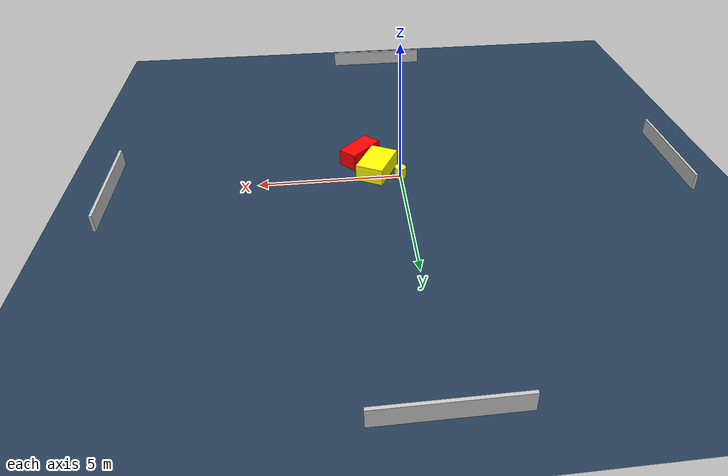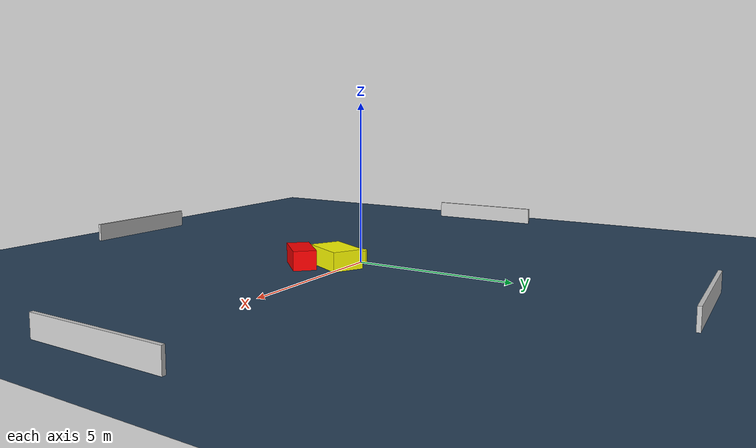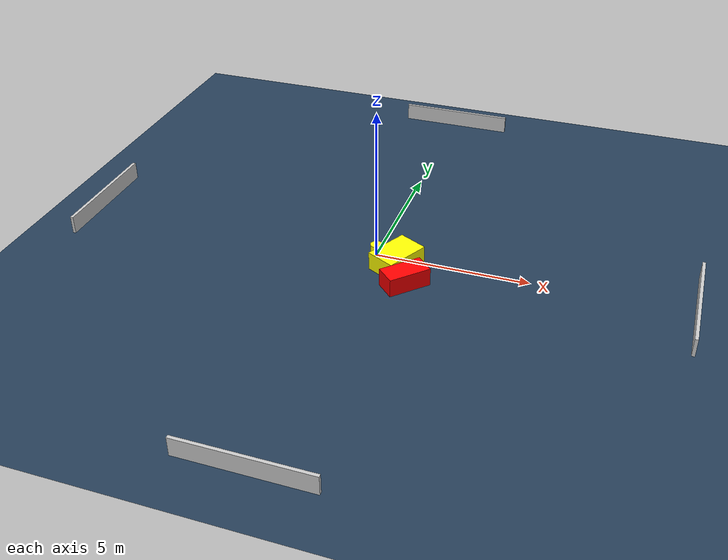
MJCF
<?xml version="1.0" ?>
<mujoco model="generated_environment">
  <option timestep="0.01" integrator="RK4" cone="elliptic"/>
  <default>
    <geom density="1"/>
  </default>
  <asset>
    <texture builtin="gradient" height="3072" name="skybox" rgb1="0.3 0.5 0.7" rgb2="0 0 0" type="skybox" width="512"/>
    <texture builtin="checker" height="300" name="groundplane" rgb1="0.2 0.3 0.4" rgb2="0.1 0.2 0.3" type="2d" width="300"/>
    <material name="groundplane" reflectance="0.2" texrepeat="5 5" texture="groundplane"/>
  </asset>
  <worldbody>
    <light dir="0 0 -1" directional="true" pos="0 0 1.5"/>
    <geom condim="3" friction="0.5 0.005 0.001" material="groundplane" name="floor" pos="0 0 0" size="0 0 0.05" type="plane"/>
    <body name="walls">
      <geom name="wall_1" condim="4" pos="-10.0 0.0 0.3" rgba="0.800000011920929 0.800000011920929 0.800000011920929 1.0" size="0.05 2.0 0.3" type="box"/>
      <geom name="wall_2" condim="4" pos="10.0 0.0 0.3" rgba="0.800000011920929 0.800000011920929 0.800000011920929 1.0" size="0.05 2.0 0.3" type="box"/>
      <geom name="wall_3" condim="4" pos="0.0 -10.0 0.3" rgba="0.800000011920929 0.800000011920929 0.800000011920929 1.0" size="2.0 0.05 0.3" type="box"/>
      <geom name="wall_4" condim="4" pos="0.0 10.0 0.3" rgba="0.800000011920929 0.800000011920929 0.800000011920929 1.0" size="2.0 0.05 0.3" type="box"/>
    </body>
    <body name="robot">
      <joint name="joint_x" type="slide" pos="0 0 0" axis="1 0 0"/>
      <joint name="joint_y" type="slide" pos="0 0 0" axis="0 1 0"/>
      <geom name="robot" type="cylinder" pos="0.0 0.0 0.2" size="0.2 0.2 0.0" mass="5.0" friction="1.0 0.005 0.0001" condim="4" rgba="1.0 1.0 0.0 1.0"/>
    </body>
    <body name="obstacle_1_movable">
      <geom name="obstacle_1_movable" condim="4" pos="0.7980475140475712 -0.3891101197519565 0.3" euler="0 0 242.8631517344697" friction="0.0 0.005 0.001" rgba="1.0 1.0 0.0 1.0" size="0.7475564587447583 0.4959189545252889 0.3" type="box" mass="0.1"/>
      <joint type="free"/>
    </body>
    <body name="obstacle_2_static">
      <geom name="obstacle_2_static" condim="4" pos="1.3574334282242468 -1.3159383370264717 0.3" euler="0 0 315.6902022814868" friction="0.0 0.005 0.001" rgba="1.0 0.0 0.0 1.0" size="0.35261302450710674 0.699362061324186 0.3" type="box"/>
    </body>
  </worldbody>
  <actuator>
    <motor name="actuator_x" joint="joint_x" gear="1" ctrlrange="-1 1"/>
    <motor name="actuator_y" joint="joint_y" gear="1" ctrlrange="-1 1"/>
  </actuator>
</mujoco>
